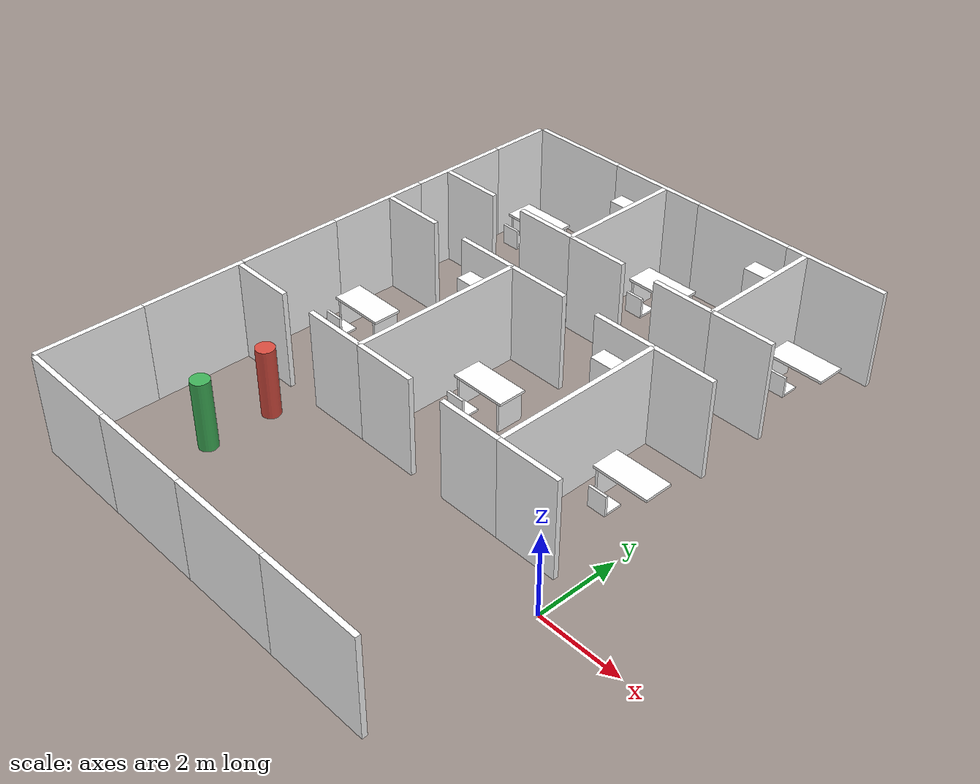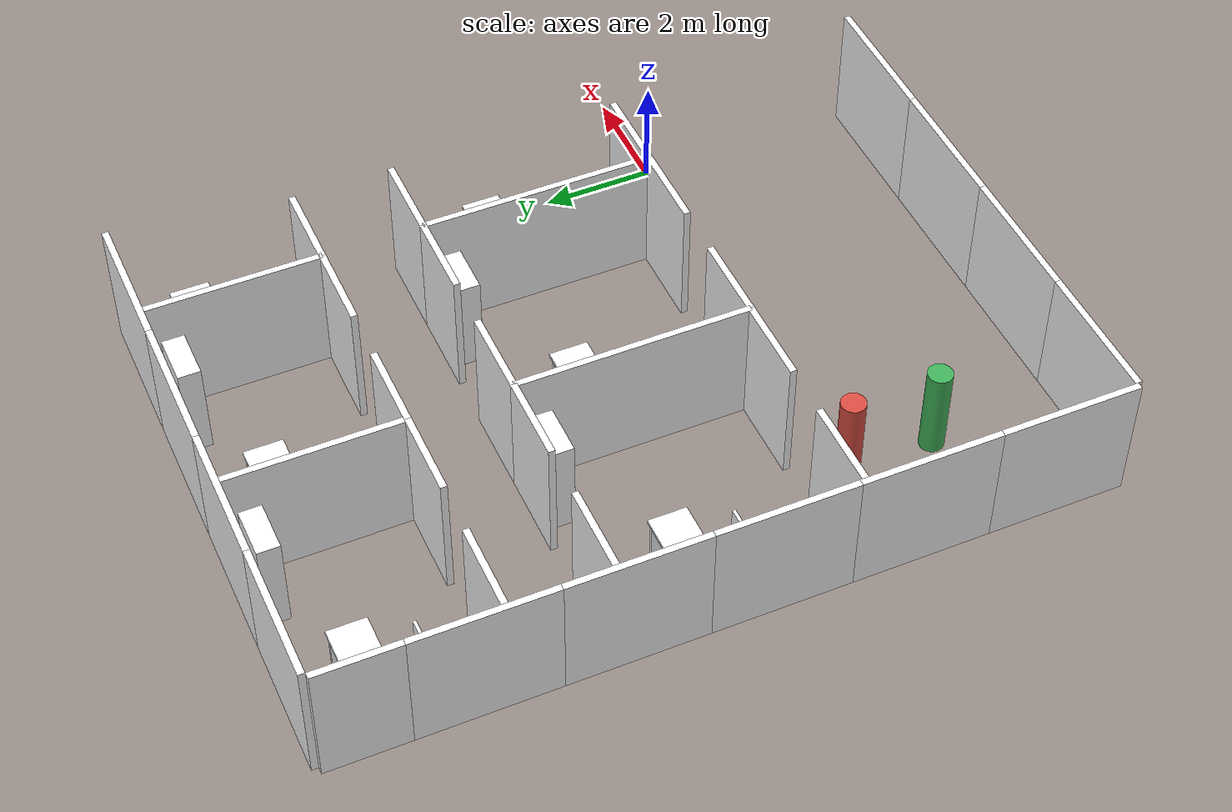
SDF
<sdf version="1.9">
 <world name="office">
  <model name="ground_plane">
   <static>true</static>
   <link name="link">
    <collision name="collision">
     <geometry><plane><normal>0 0 1</normal><size>100 100</size></plane></geometry>
     <surface><friction><ode><mu>1.0</mu><mu2>1.0</mu2></ode></friction></surface>
    </collision>
   </link>
  </model>
  <model name="w_s0">
   <static>true</static>
   <pose>-8.7500 -4.0100 1.2000 0 0 0</pose>
   <link name="link">
    <collision name="c"><geometry><box><size>2.5000 0.1200 2.4000</size></box></geometry></collision>
    <visual name="v">
     <geometry><box><size>2.5000 0.1200 2.4000</size></box></geometry>
     <material>
      <diffuse>1 1 1 1</diffuse>
      <pbr>
       <metal>
        <albedo_map>model://room_materials/materials/textures/office_000.png</albedo_map>
        <roughness>0.92</roughness>
       </metal>
      </pbr>
     </material>
    </visual>
   </link>
  </model>
  <model name="w_n1">
   <static>true</static>
   <pose>-8.7500 10.0600 1.2000 0 0 0</pose>
   <link name="link">
    <collision name="c"><geometry><box><size>2.5000 0.1200 2.4000</size></box></geometry></collision>
    <visual name="v">
     <geometry><box><size>2.5000 0.1200 2.4000</size></box></geometry>
     <material>
      <diffuse>1 1 1 1</diffuse>
      <pbr>
       <metal>
        <albedo_map>model://room_materials/materials/textures/office_001.png</albedo_map>
        <roughness>0.92</roughness>
       </metal>
      </pbr>
     </material>
    </visual>
   </link>
  </model>
  <model name="w_s2">
   <static>true</static>
   <pose>-6.2500 -4.0100 1.2000 0 0 0</pose>
   <link name="link">
    <collision name="c"><geometry><box><size>2.5000 0.1200 2.4000</size></box></geometry></collision>
    <visual name="v">
     <geometry><box><size>2.5000 0.1200 2.4000</size></box></geometry>
     <material>
      <diffuse>1 1 1 1</diffuse>
      <pbr>
       <metal>
        <albedo_map>model://room_materials/materials/textures/office_002.png</albedo_map>
        <roughness>0.92</roughness>
       </metal>
      </pbr>
     </material>
    </visual>
   </link>
  </model>
  <model name="w_n3">
   <static>true</static>
   <pose>-6.2500 10.0600 1.2000 0 0 0</pose>
   <link name="link">
    <collision name="c"><geometry><box><size>2.5000 0.1200 2.4000</size></box></geometry></collision>
    <visual name="v">
     <geometry><box><size>2.5000 0.1200 2.4000</size></box></geometry>
     <material>
      <diffuse>1 1 1 1</diffuse>
      <pbr>
       <metal>
        <albedo_map>model://room_materials/materials/textures/office_003.png</albedo_map>
        <roughness>0.92</roughness>
       </metal>
      </pbr>
     </material>
    </visual>
   </link>
  </model>
  <model name="w_s4">
   <static>true</static>
   <pose>-3.7500 -4.0100 1.2000 0 0 0</pose>
   <link name="link">
    <collision name="c"><geometry><box><size>2.5000 0.1200 2.4000</size></box></geometry></collision>
    <visual name="v">
     <geometry><box><size>2.5000 0.1200 2.4000</size></box></geometry>
     <material>
      <diffuse>1 1 1 1</diffuse>
      <pbr>
       <metal>
        <albedo_map>model://room_materials/materials/textures/office_004.png</albedo_map>
        <roughness>0.92</roughness>
       </metal>
      </pbr>
     </material>
    </visual>
   </link>
  </model>
  <model name="w_n5">
   <static>true</static>
   <pose>-3.7500 10.0600 1.2000 0 0 0</pose>
   <link name="link">
    <collision name="c"><geometry><box><size>2.5000 0.1200 2.4000</size></box></geometry></collision>
    <visual name="v">
     <geometry><box><size>2.5000 0.1200 2.4000</size></box></geometry>
     <material>
      <diffuse>1 1 1 1</diffuse>
      <pbr>
       <metal>
        <albedo_map>model://room_materials/materials/textures/office_005.png</albedo_map>
        <roughness>0.92</roughness>
       </metal>
      </pbr>
     </material>
    </visual>
   </link>
  </model>
  <model name="w_s6">
   <static>true</static>
   <pose>-1.2500 -4.0100 1.2000 0 0 0</pose>
   <link name="link">
    <collision name="c"><geometry><box><size>2.5000 0.1200 2.4000</size></box></geometry></collision>
    <visual name="v">
     <geometry><box><size>2.5000 0.1200 2.4000</size></box></geometry>
     <material>
      <diffuse>1 1 1 1</diffuse>
      <pbr>
       <metal>
        <albedo_map>model://room_materials/materials/textures/office_006.png</albedo_map>
        <roughness>0.92</roughness>
       </metal>
      </pbr>
     </material>
    </visual>
   </link>
  </model>
  <model name="w_n7">
   <static>true</static>
   <pose>-1.2500 10.0600 1.2000 0 0 0</pose>
   <link name="link">
    <collision name="c"><geometry><box><size>2.5000 0.1200 2.4000</size></box></geometry></collision>
    <visual name="v">
     <geometry><box><size>2.5000 0.1200 2.4000</size></box></geometry>
     <material>
      <diffuse>1 1 1 1</diffuse>
      <pbr>
       <metal>
        <albedo_map>model://room_materials/materials/textures/office_007.png</albedo_map>
        <roughness>0.92</roughness>
       </metal>
      </pbr>
     </material>
    </visual>
   </link>
  </model>
  <model name="w_w16">
   <static>true</static>
   <pose>-10.0600 -2.7500 1.2000 0 0 0</pose>
   <link name="link">
    <collision name="c"><geometry><box><size>0.1200 2.5000 2.4000</size></box></geometry></collision>
    <visual name="v">
     <geometry><box><size>0.1200 2.5000 2.4000</size></box></geometry>
     <material>
      <diffuse>1 1 1 1</diffuse>
      <pbr>
       <metal>
        <albedo_map>model://room_materials/materials/textures/office_016.png</albedo_map>
        <roughness>0.92</roughness>
       </metal>
      </pbr>
     </material>
    </visual>
   </link>
  </model>
  <model name="w_w18">
   <static>true</static>
   <pose>-10.0600 -0.2500 1.2000 0 0 0</pose>
   <link name="link">
    <collision name="c"><geometry><box><size>0.1200 2.5000 2.4000</size></box></geometry></collision>
    <visual name="v">
     <geometry><box><size>0.1200 2.5000 2.4000</size></box></geometry>
     <material>
      <diffuse>1 1 1 1</diffuse>
      <pbr>
       <metal>
        <albedo_map>model://room_materials/materials/textures/office_018.png</albedo_map>
        <roughness>0.92</roughness>
       </metal>
      </pbr>
     </material>
    </visual>
   </link>
  </model>
  <model name="w_w20">
   <static>true</static>
   <pose>-10.0600 2.2500 1.2000 0 0 0</pose>
   <link name="link">
    <collision name="c"><geometry><box><size>0.1200 2.5000 2.4000</size></box></geometry></collision>
    <visual name="v">
     <geometry><box><size>0.1200 2.5000 2.4000</size></box></geometry>
     <material>
      <diffuse>1 1 1 1</diffuse>
      <pbr>
       <metal>
        <albedo_map>model://room_materials/materials/textures/office_020.png</albedo_map>
        <roughness>0.92</roughness>
       </metal>
      </pbr>
     </material>
    </visual>
   </link>
  </model>
  <model name="w_w22">
   <static>true</static>
   <pose>-10.0600 4.7500 1.2000 0 0 0</pose>
   <link name="link">
    <collision name="c"><geometry><box><size>0.1200 2.5000 2.4000</size></box></geometry></collision>
    <visual name="v">
     <geometry><box><size>0.1200 2.5000 2.4000</size></box></geometry>
     <material>
      <diffuse>1 1 1 1</diffuse>
      <pbr>
       <metal>
        <albedo_map>model://room_materials/materials/textures/office_022.png</albedo_map>
        <roughness>0.92</roughness>
       </metal>
      </pbr>
     </material>
    </visual>
   </link>
  </model>
  <model name="w_w24">
   <static>true</static>
   <pose>-10.0600 7.2500 1.2000 0 0 0</pose>
   <link name="link">
    <collision name="c"><geometry><box><size>0.1200 2.5000 2.4000</size></box></geometry></collision>
    <visual name="v">
     <geometry><box><size>0.1200 2.5000 2.4000</size></box></geometry>
     <material>
      <diffuse>1 1 1 1</diffuse>
      <pbr>
       <metal>
        <albedo_map>model://room_materials/materials/textures/office_024.png</albedo_map>
        <roughness>0.92</roughness>
       </metal>
      </pbr>
     </material>
    </visual>
   </link>
  </model>
  <model name="w_w26">
   <static>true</static>
   <pose>-10.0600 9.2500 1.2000 0 0 0</pose>
   <link name="link">
    <collision name="c"><geometry><box><size>0.1200 1.5000 2.4000</size></box></geometry></collision>
    <visual name="v">
     <geometry><box><size>0.1200 1.5000 2.4000</size></box></geometry>
     <material>
      <diffuse>1 1 1 1</diffuse>
      <pbr>
       <metal>
        <albedo_map>model://room_materials/materials/textures/office_026.png</albedo_map>
        <roughness>0.92</roughness>
       </metal>
      </pbr>
     </material>
    </visual>
   </link>
  </model>
  <model name="cA_n_0a">
   <static>true</static>
   <pose>-9.2250 0.9000 1.2000 0 0 0</pose>
   <link name="link">
    <collision name="c"><geometry><box><size>1.5500 0.1200 2.4000</size></box></geometry></collision>
    <visual name="v">
     <geometry><box><size>1.5500 0.1200 2.4000</size></box></geometry>
     <material>
      <diffuse>1 1 1 1</diffuse>
      <pbr>
       <metal>
        <albedo_map>model://room_materials/materials/textures/office_028.png</albedo_map>
        <roughness>0.92</roughness>
       </metal>
      </pbr>
     </material>
    </visual>
   </link>
  </model>
  <model name="cA_n_0b">
   <static>true</static>
   <pose>-6.7750 0.9000 1.2000 0 0 0</pose>
   <link name="link">
    <collision name="c"><geometry><box><size>1.5500 0.1200 2.4000</size></box></geometry></collision>
    <visual name="v">
     <geometry><box><size>1.5500 0.1200 2.4000</size></box></geometry>
     <material>
      <diffuse>1 1 1 1</diffuse>
      <pbr>
       <metal>
        <albedo_map>model://room_materials/materials/textures/office_029.png</albedo_map>
        <roughness>0.92</roughness>
       </metal>
      </pbr>
     </material>
    </visual>
   </link>
  </model>
  <model name="cA_n_1a">
   <static>true</static>
   <pose>-5.2250 0.9000 1.2000 0 0 0</pose>
   <link name="link">
    <collision name="c"><geometry><box><size>1.5500 0.1200 2.4000</size></box></geometry></collision>
    <visual name="v">
     <geometry><box><size>1.5500 0.1200 2.4000</size></box></geometry>
     <material>
      <diffuse>1 1 1 1</diffuse>
      <pbr>
       <metal>
        <albedo_map>model://room_materials/materials/textures/office_030.png</albedo_map>
        <roughness>0.92</roughness>
       </metal>
      </pbr>
     </material>
    </visual>
   </link>
  </model>
  <model name="cA_n_1b">
   <static>true</static>
   <pose>-2.7750 0.9000 1.2000 0 0 0</pose>
   <link name="link">
    <collision name="c"><geometry><box><size>1.5500 0.1200 2.4000</size></box></geometry></collision>
    <visual name="v">
     <geometry><box><size>1.5500 0.1200 2.4000</size></box></geometry>
     <material>
      <diffuse>1 1 1 1</diffuse>
      <pbr>
       <metal>
        <albedo_map>model://room_materials/materials/textures/office_031.png</albedo_map>
        <roughness>0.92</roughness>
       </metal>
      </pbr>
     </material>
    </visual>
   </link>
  </model>
  <model name="cA_n_2a">
   <static>true</static>
   <pose>-1.2250 0.9000 1.2000 0 0 0</pose>
   <link name="link">
    <collision name="c"><geometry><box><size>1.5500 0.1200 2.4000</size></box></geometry></collision>
    <visual name="v">
     <geometry><box><size>1.5500 0.1200 2.4000</size></box></geometry>
     <material>
      <diffuse>1 1 1 1</diffuse>
      <pbr>
       <metal>
        <albedo_map>model://room_materials/materials/textures/office_032.png</albedo_map>
        <roughness>0.92</roughness>
       </metal>
      </pbr>
     </material>
    </visual>
   </link>
  </model>
  <model name="cB_s_0a">
   <static>true</static>
   <pose>-9.2250 5.1000 1.2000 0 0 0</pose>
   <link name="link">
    <collision name="c"><geometry><box><size>1.5500 0.1200 2.4000</size></box></geometry></collision>
    <visual name="v">
     <geometry><box><size>1.5500 0.1200 2.4000</size></box></geometry>
     <material>
      <diffuse>1 1 1 1</diffuse>
      <pbr>
       <metal>
        <albedo_map>model://room_materials/materials/textures/office_038.png</albedo_map>
        <roughness>0.92</roughness>
       </metal>
      </pbr>
     </material>
    </visual>
   </link>
  </model>
  <model name="cB_s_0b">
   <static>true</static>
   <pose>-6.7750 5.1000 1.2000 0 0 0</pose>
   <link name="link">
    <collision name="c"><geometry><box><size>1.5500 0.1200 2.4000</size></box></geometry></collision>
    <visual name="v">
     <geometry><box><size>1.5500 0.1200 2.4000</size></box></geometry>
     <material>
      <diffuse>1 1 1 1</diffuse>
      <pbr>
       <metal>
        <albedo_map>model://room_materials/materials/textures/office_039.png</albedo_map>
        <roughness>0.92</roughness>
       </metal>
      </pbr>
     </material>
    </visual>
   </link>
  </model>
  <model name="cB_s_1a">
   <static>true</static>
   <pose>-5.2250 5.1000 1.2000 0 0 0</pose>
   <link name="link">
    <collision name="c"><geometry><box><size>1.5500 0.1200 2.4000</size></box></geometry></collision>
    <visual name="v">
     <geometry><box><size>1.5500 0.1200 2.4000</size></box></geometry>
     <material>
      <diffuse>1 1 1 1</diffuse>
      <pbr>
       <metal>
        <albedo_map>model://room_materials/materials/textures/office_040.png</albedo_map>
        <roughness>0.92</roughness>
       </metal>
      </pbr>
     </material>
    </visual>
   </link>
  </model>
  <model name="cB_s_1b">
   <static>true</static>
   <pose>-2.7750 5.1000 1.2000 0 0 0</pose>
   <link name="link">
    <collision name="c"><geometry><box><size>1.5500 0.1200 2.4000</size></box></geometry></collision>
    <visual name="v">
     <geometry><box><size>1.5500 0.1200 2.4000</size></box></geometry>
     <material>
      <diffuse>1 1 1 1</diffuse>
      <pbr>
       <metal>
        <albedo_map>model://room_materials/materials/textures/office_041.png</albedo_map>
        <roughness>0.92</roughness>
       </metal>
      </pbr>
     </material>
    </visual>
   </link>
  </model>
  <model name="cB_s_2a">
   <static>true</static>
   <pose>-1.2250 5.1000 1.2000 0 0 0</pose>
   <link name="link">
    <collision name="c"><geometry><box><size>1.5500 0.1200 2.4000</size></box></geometry></collision>
    <visual name="v">
     <geometry><box><size>1.5500 0.1200 2.4000</size></box></geometry>
     <material>
      <diffuse>1 1 1 1</diffuse>
      <pbr>
       <metal>
        <albedo_map>model://room_materials/materials/textures/office_042.png</albedo_map>
        <roughness>0.92</roughness>
       </metal>
      </pbr>
     </material>
    </visual>
   </link>
  </model>
  <model name="cB_n_0a">
   <static>true</static>
   <pose>-9.2250 6.9000 1.2000 0 0 0</pose>
   <link name="link">
    <collision name="c"><geometry><box><size>1.5500 0.1200 2.4000</size></box></geometry></collision>
    <visual name="v">
     <geometry><box><size>1.5500 0.1200 2.4000</size></box></geometry>
     <material>
      <diffuse>1 1 1 1</diffuse>
      <pbr>
       <metal>
        <albedo_map>model://room_materials/materials/textures/office_048.png</albedo_map>
        <roughness>0.92</roughness>
       </metal>
      </pbr>
     </material>
    </visual>
   </link>
  </model>
  <model name="cB_n_0b">
   <static>true</static>
   <pose>-6.7750 6.9000 1.2000 0 0 0</pose>
   <link name="link">
    <collision name="c"><geometry><box><size>1.5500 0.1200 2.4000</size></box></geometry></collision>
    <visual name="v">
     <geometry><box><size>1.5500 0.1200 2.4000</size></box></geometry>
     <material>
      <diffuse>1 1 1 1</diffuse>
      <pbr>
       <metal>
        <albedo_map>model://room_materials/materials/textures/office_049.png</albedo_map>
        <roughness>0.92</roughness>
       </metal>
      </pbr>
     </material>
    </visual>
   </link>
  </model>
  <model name="cB_n_1a">
   <static>true</static>
   <pose>-5.2250 6.9000 1.2000 0 0 0</pose>
   <link name="link">
    <collision name="c"><geometry><box><size>1.5500 0.1200 2.4000</size></box></geometry></collision>
    <visual name="v">
     <geometry><box><size>1.5500 0.1200 2.4000</size></box></geometry>
     <material>
      <diffuse>1 1 1 1</diffuse>
      <pbr>
       <metal>
        <albedo_map>model://room_materials/materials/textures/office_050.png</albedo_map>
        <roughness>0.92</roughness>
       </metal>
      </pbr>
     </material>
    </visual>
   </link>
  </model>
  <model name="cB_n_1b">
   <static>true</static>
   <pose>-2.7750 6.9000 1.2000 0 0 0</pose>
   <link name="link">
    <collision name="c"><geometry><box><size>1.5500 0.1200 2.4000</size></box></geometry></collision>
    <visual name="v">
     <geometry><box><size>1.5500 0.1200 2.4000</size></box></geometry>
     <material>
      <diffuse>1 1 1 1</diffuse>
      <pbr>
       <metal>
        <albedo_map>model://room_materials/materials/textures/office_051.png</albedo_map>
        <roughness>0.92</roughness>
       </metal>
      </pbr>
     </material>
    </visual>
   </link>
  </model>
  <model name="cB_n_2a">
   <static>true</static>
   <pose>-1.2250 6.9000 1.2000 0 0 0</pose>
   <link name="link">
    <collision name="c"><geometry><box><size>1.5500 0.1200 2.4000</size></box></geometry></collision>
    <visual name="v">
     <geometry><box><size>1.5500 0.1200 2.4000</size></box></geometry>
     <material>
      <diffuse>1 1 1 1</diffuse>
      <pbr>
       <metal>
        <albedo_map>model://room_materials/materials/textures/office_052.png</albedo_map>
        <roughness>0.92</roughness>
       </metal>
      </pbr>
     </material>
    </visual>
   </link>
  </model>
  <model name="p1_0">
   <static>true</static>
   <pose>-6.0000 3.0000 1.2000 0 0 0</pose>
   <link name="link">
    <collision name="c"><geometry><box><size>0.1200 4.2000 2.4000</size></box></geometry></collision>
    <visual name="v">
     <geometry><box><size>0.1200 4.2000 2.4000</size></box></geometry>
     <material>
      <diffuse>1 1 1 1</diffuse>
      <pbr>
       <metal>
        <albedo_map>model://room_materials/materials/textures/office_058.png</albedo_map>
        <roughness>0.92</roughness>
       </metal>
      </pbr>
     </material>
    </visual>
   </link>
  </model>
  <model name="p2_0">
   <static>true</static>
   <pose>-6.0000 8.4500 1.2000 0 0 0</pose>
   <link name="link">
    <collision name="c"><geometry><box><size>0.1200 3.1000 2.4000</size></box></geometry></collision>
    <visual name="v">
     <geometry><box><size>0.1200 3.1000 2.4000</size></box></geometry>
     <material>
      <diffuse>1 1 1 1</diffuse>
      <pbr>
       <metal>
        <albedo_map>model://room_materials/materials/textures/office_059.png</albedo_map>
        <roughness>0.92</roughness>
       </metal>
      </pbr>
     </material>
    </visual>
   </link>
  </model>
  <model name="p1_1">
   <static>true</static>
   <pose>-2.0000 3.0000 1.2000 0 0 0</pose>
   <link name="link">
    <collision name="c"><geometry><box><size>0.1200 4.2000 2.4000</size></box></geometry></collision>
    <visual name="v">
     <geometry><box><size>0.1200 4.2000 2.4000</size></box></geometry>
     <material>
      <diffuse>1 1 1 1</diffuse>
      <pbr>
       <metal>
        <albedo_map>model://room_materials/materials/textures/office_060.png</albedo_map>
        <roughness>0.92</roughness>
       </metal>
      </pbr>
     </material>
    </visual>
   </link>
  </model>
  <model name="p2_1">
   <static>true</static>
   <pose>-2.0000 8.4500 1.2000 0 0 0</pose>
   <link name="link">
    <collision name="c"><geometry><box><size>0.1200 3.1000 2.4000</size></box></geometry></collision>
    <visual name="v">
     <geometry><box><size>0.1200 3.1000 2.4000</size></box></geometry>
     <material>
      <diffuse>1 1 1 1</diffuse>
      <pbr>
       <metal>
        <albedo_map>model://room_materials/materials/textures/office_061.png</albedo_map>
        <roughness>0.92</roughness>
       </metal>
      </pbr>
     </material>
    </visual>
   </link>
  </model>
  <model name="desk_0">
   <static>true</static>
   <pose>-8.900 3.400 0.750 0 0 0</pose>
   <link name="link">
    <collision name="c"><geometry><box><size>1.400 0.700 0.060</size></box></geometry></collision>
    <visual name="v">
     <geometry><box><size>1.400 0.700 0.060</size></box></geometry>
     <material>
      <diffuse>1 1 1 1</diffuse>
      <pbr>
       <metal>
        <albedo_map>model://room_materials/materials/textures/poster1.png</albedo_map>
        <roughness>0.92</roughness>
       </metal>
      </pbr>
     </material>
    </visual>
   </link>
  </model>
  <model name="desk_0_l1">
   <static>true</static>
   <pose>-9.500 3.400 0.360 0 0 0</pose>
   <link name="link">
    <collision name="c"><geometry><box><size>0.060 0.660 0.720</size></box></geometry></collision>
    <visual name="v">
     <geometry><box><size>0.060 0.660 0.720</size></box></geometry>
     <material>
      <diffuse>1 1 1 1</diffuse>
      <pbr>
       <metal>
        <albedo_map>model://room_materials/materials/textures/crate.png</albedo_map>
        <roughness>0.92</roughness>
       </metal>
      </pbr>
     </material>
    </visual>
   </link>
  </model>
  <model name="desk_0_l2">
   <static>true</static>
   <pose>-8.300 3.400 0.360 0 0 0</pose>
   <link name="link">
    <collision name="c"><geometry><box><size>0.060 0.660 0.720</size></box></geometry></collision>
    <visual name="v">
     <geometry><box><size>0.060 0.660 0.720</size></box></geometry>
     <material>
      <diffuse>1 1 1 1</diffuse>
      <pbr>
       <metal>
        <albedo_map>model://room_materials/materials/textures/crate.png</albedo_map>
        <roughness>0.92</roughness>
       </metal>
      </pbr>
     </material>
    </visual>
   </link>
  </model>
  <model name="chair_0">
   <static>true</static>
   <pose>-8.900 2.650 0.455 0 0 0</pose>
   <link name="link">
    <collision name="c"><geometry><box><size>0.450 0.450 0.050</size></box></geometry></collision>
    <visual name="v">
     <geometry><box><size>0.450 0.450 0.050</size></box></geometry>
     <material>
      <diffuse>1 1 1 1</diffuse>
      <pbr>
       <metal>
        <albedo_map>model://room_materials/materials/textures/crate.png</albedo_map>
        <roughness>0.92</roughness>
       </metal>
      </pbr>
     </material>
    </visual>
   </link>
  </model>
  <model name="chair_0_b">
   <static>true</static>
   <pose>-8.900 2.450 0.680 0 0 0</pose>
   <link name="link">
    <collision name="c"><geometry><box><size>0.450 0.060 0.500</size></box></geometry></collision>
    <visual name="v">
     <geometry><box><size>0.450 0.060 0.500</size></box></geometry>
     <material>
      <diffuse>1 1 1 1</diffuse>
      <pbr>
       <metal>
        <albedo_map>model://room_materials/materials/textures/poster1.png</albedo_map>
        <roughness>0.92</roughness>
       </metal>
      </pbr>
     </material>
    </visual>
   </link>
  </model>
  <model name="shelf_0">
   <static>true</static>
   <pose>-6.700 4.750 0.900 0 0 0</pose>
   <link name="link">
    <collision name="c"><geometry><box><size>0.900 0.400 1.800</size></box></geometry></collision>
    <visual name="v">
     <geometry><box><size>0.900 0.400 1.800</size></box></geometry>
     <material>
      <diffuse>1 1 1 1</diffuse>
      <pbr>
       <metal>
        <albedo_map>model://room_materials/materials/textures/poster1.png</albedo_map>
        <roughness>0.92</roughness>
       </metal>
      </pbr>
     </material>
    </visual>
   </link>
  </model>
  <model name="desk_1">
   <static>true</static>
   <pose>-4.900 3.400 0.750 0 0 0</pose>
   <link name="link">
    <collision name="c"><geometry><box><size>1.400 0.700 0.060</size></box></geometry></collision>
    <visual name="v">
     <geometry><box><size>1.400 0.700 0.060</size></box></geometry>
     <material>
      <diffuse>1 1 1 1</diffuse>
      <pbr>
       <metal>
        <albedo_map>model://room_materials/materials/textures/poster2.png</albedo_map>
        <roughness>0.92</roughness>
       </metal>
      </pbr>
     </material>
    </visual>
   </link>
  </model>
  <model name="desk_1_l1">
   <static>true</static>
   <pose>-5.500 3.400 0.360 0 0 0</pose>
   <link name="link">
    <collision name="c"><geometry><box><size>0.060 0.660 0.720</size></box></geometry></collision>
    <visual name="v">
     <geometry><box><size>0.060 0.660 0.720</size></box></geometry>
     <material>
      <diffuse>1 1 1 1</diffuse>
      <pbr>
       <metal>
        <albedo_map>model://room_materials/materials/textures/crate.png</albedo_map>
        <roughness>0.92</roughness>
       </metal>
      </pbr>
     </material>
    </visual>
   </link>
  </model>
  <model name="desk_1_l2">
   <static>true</static>
   <pose>-4.300 3.400 0.360 0 0 0</pose>
   <link name="link">
    <collision name="c"><geometry><box><size>0.060 0.660 0.720</size></box></geometry></collision>
    <visual name="v">
     <geometry><box><size>0.060 0.660 0.720</size></box></geometry>
     <material>
      <diffuse>1 1 1 1</diffuse>
      <pbr>
       <metal>
        <albedo_map>model://room_materials/materials/textures/crate.png</albedo_map>
        <roughness>0.92</roughness>
       </metal>
      </pbr>
     </material>
    </visual>
   </link>
  </model>
  <model name="chair_1">
   <static>true</static>
   <pose>-4.900 2.650 0.455 0 0 0</pose>
   <link name="link">
    <collision name="c"><geometry><box><size>0.450 0.450 0.050</size></box></geometry></collision>
    <visual name="v">
     <geometry><box><size>0.450 0.450 0.050</size></box></geometry>
     <material>
      <diffuse>1 1 1 1</diffuse>
      <pbr>
       <metal>
        <albedo_map>model://room_materials/materials/textures/crate.png</albedo_map>
        <roughness>0.92</roughness>
       </metal>
      </pbr>
     </material>
    </visual>
   </link>
  </model>
  <model name="chair_1_b">
   <static>true</static>
   <pose>-4.900 2.450 0.680 0 0 0</pose>
   <link name="link">
    <collision name="c"><geometry><box><size>0.450 0.060 0.500</size></box></geometry></collision>
    <visual name="v">
     <geometry><box><size>0.450 0.060 0.500</size></box></geometry>
     <material>
      <diffuse>1 1 1 1</diffuse>
      <pbr>
       <metal>
        <albedo_map>model://room_materials/materials/textures/poster2.png</albedo_map>
        <roughness>0.92</roughness>
       </metal>
      </pbr>
     </material>
    </visual>
   </link>
  </model>
  <model name="shelf_1">
   <static>true</static>
   <pose>-2.700 4.750 0.900 0 0 0</pose>
   <link name="link">
    <collision name="c"><geometry><box><size>0.900 0.400 1.800</size></box></geometry></collision>
    <visual name="v">
     <geometry><box><size>0.900 0.400 1.800</size></box></geometry>
     <material>
      <diffuse>1 1 1 1</diffuse>
      <pbr>
       <metal>
        <albedo_map>model://room_materials/materials/textures/poster2.png</albedo_map>
        <roughness>0.92</roughness>
       </metal>
      </pbr>
     </material>
    </visual>
   </link>
  </model>
  <model name="desk_2">
   <static>true</static>
   <pose>-0.900 3.400 0.750 0 0 0</pose>
   <link name="link">
    <collision name="c"><geometry><box><size>1.400 0.700 0.060</size></box></geometry></collision>
    <visual name="v">
     <geometry><box><size>1.400 0.700 0.060</size></box></geometry>
     <material>
      <diffuse>1 1 1 1</diffuse>
      <pbr>
       <metal>
        <albedo_map>model://room_materials/materials/textures/poster3.png</albedo_map>
        <roughness>0.92</roughness>
       </metal>
      </pbr>
     </material>
    </visual>
   </link>
  </model>
  <model name="desk_2_l1">
   <static>true</static>
   <pose>-1.500 3.400 0.360 0 0 0</pose>
   <link name="link">
    <collision name="c"><geometry><box><size>0.060 0.660 0.720</size></box></geometry></collision>
    <visual name="v">
     <geometry><box><size>0.060 0.660 0.720</size></box></geometry>
     <material>
      <diffuse>1 1 1 1</diffuse>
      <pbr>
       <metal>
        <albedo_map>model://room_materials/materials/textures/crate.png</albedo_map>
        <roughness>0.92</roughness>
       </metal>
      </pbr>
     </material>
    </visual>
   </link>
  </model>
  <model name="chair_2">
   <static>true</static>
   <pose>-0.900 2.650 0.455 0 0 0</pose>
   <link name="link">
    <collision name="c"><geometry><box><size>0.450 0.450 0.050</size></box></geometry></collision>
    <visual name="v">
     <geometry><box><size>0.450 0.450 0.050</size></box></geometry>
     <material>
      <diffuse>1 1 1 1</diffuse>
      <pbr>
       <metal>
        <albedo_map>model://room_materials/materials/textures/crate.png</albedo_map>
        <roughness>0.92</roughness>
       </metal>
      </pbr>
     </material>
    </visual>
   </link>
  </model>
  <model name="chair_2_b">
   <static>true</static>
   <pose>-0.900 2.450 0.680 0 0 0</pose>
   <link name="link">
    <collision name="c"><geometry><box><size>0.450 0.060 0.500</size></box></geometry></collision>
    <visual name="v">
     <geometry><box><size>0.450 0.060 0.500</size></box></geometry>
     <material>
      <diffuse>1 1 1 1</diffuse>
      <pbr>
       <metal>
        <albedo_map>model://room_materials/materials/textures/poster3.png</albedo_map>
        <roughness>0.92</roughness>
       </metal>
      </pbr>
     </material>
    </visual>
   </link>
  </model>
  <model name="desk_5">
   <static>true</static>
   <pose>-8.900 8.850 0.750 0 0 0</pose>
   <link name="link">
    <collision name="c"><geometry><box><size>1.400 0.700 0.060</size></box></geometry></collision>
    <visual name="v">
     <geometry><box><size>1.400 0.700 0.060</size></box></geometry>
     <material>
      <diffuse>1 1 1 1</diffuse>
      <pbr>
       <metal>
        <albedo_map>model://room_materials/materials/textures/poster6.png</albedo_map>
        <roughness>0.92</roughness>
       </metal>
      </pbr>
     </material>
    </visual>
   </link>
  </model>
  <model name="desk_5_l1">
   <static>true</static>
   <pose>-9.500 8.850 0.360 0 0 0</pose>
   <link name="link">
    <collision name="c"><geometry><box><size>0.060 0.660 0.720</size></box></geometry></collision>
    <visual name="v">
     <geometry><box><size>0.060 0.660 0.720</size></box></geometry>
     <material>
      <diffuse>1 1 1 1</diffuse>
      <pbr>
       <metal>
        <albedo_map>model://room_materials/materials/textures/crate.png</albedo_map>
        <roughness>0.92</roughness>
       </metal>
      </pbr>
     </material>
    </visual>
   </link>
  </model>
  <model name="desk_5_l2">
   <static>true</static>
   <pose>-8.300 8.850 0.360 0 0 0</pose>
   <link name="link">
    <collision name="c"><geometry><box><size>0.060 0.660 0.720</size></box></geometry></collision>
    <visual name="v">
     <geometry><box><size>0.060 0.660 0.720</size></box></geometry>
     <material>
      <diffuse>1 1 1 1</diffuse>
      <pbr>
       <metal>
        <albedo_map>model://room_materials/materials/textures/crate.png</albedo_map>
        <roughness>0.92</roughness>
       </metal>
      </pbr>
     </material>
    </visual>
   </link>
  </model>
  <model name="chair_5">
   <static>true</static>
   <pose>-8.900 8.100 0.455 0 0 0</pose>
   <link name="link">
    <collision name="c"><geometry><box><size>0.450 0.450 0.050</size></box></geometry></collision>
    <visual name="v">
     <geometry><box><size>0.450 0.450 0.050</size></box></geometry>
     <material>
      <diffuse>1 1 1 1</diffuse>
      <pbr>
       <metal>
        <albedo_map>model://room_materials/materials/textures/crate.png</albedo_map>
        <roughness>0.92</roughness>
       </metal>
      </pbr>
     </material>
    </visual>
   </link>
  </model>
  <model name="chair_5_b">
   <static>true</static>
   <pose>-8.900 7.900 0.680 0 0 0</pose>
   <link name="link">
    <collision name="c"><geometry><box><size>0.450 0.060 0.500</size></box></geometry></collision>
    <visual name="v">
     <geometry><box><size>0.450 0.060 0.500</size></box></geometry>
     <material>
      <diffuse>1 1 1 1</diffuse>
      <pbr>
       <metal>
        <albedo_map>model://room_materials/materials/textures/poster6.png</albedo_map>
        <roughness>0.92</roughness>
       </metal>
      </pbr>
     </material>
    </visual>
   </link>
  </model>
  <model name="shelf_5">
   <static>true</static>
   <pose>-6.700 9.650 0.900 0 0 0</pose>
   <link name="link">
    <collision name="c"><geometry><box><size>0.900 0.400 1.800</size></box></geometry></collision>
    <visual name="v">
     <geometry><box><size>0.900 0.400 1.800</size></box></geometry>
     <material>
      <diffuse>1 1 1 1</diffuse>
      <pbr>
       <metal>
        <albedo_map>model://room_materials/materials/textures/poster6.png</albedo_map>
        <roughness>0.92</roughness>
       </metal>
      </pbr>
     </material>
    </visual>
   </link>
  </model>
  <model name="desk_6">
   <static>true</static>
   <pose>-4.900 8.850 0.750 0 0 0</pose>
   <link name="link">
    <collision name="c"><geometry><box><size>1.400 0.700 0.060</size></box></geometry></collision>
    <visual name="v">
     <geometry><box><size>1.400 0.700 0.060</size></box></geometry>
     <material>
      <diffuse>1 1 1 1</diffuse>
      <pbr>
       <metal>
        <albedo_map>model://room_materials/materials/textures/poster7.png</albedo_map>
        <roughness>0.92</roughness>
       </metal>
      </pbr>
     </material>
    </visual>
   </link>
  </model>
  <model name="desk_6_l1">
   <static>true</static>
   <pose>-5.500 8.850 0.360 0 0 0</pose>
   <link name="link">
    <collision name="c"><geometry><box><size>0.060 0.660 0.720</size></box></geometry></collision>
    <visual name="v">
     <geometry><box><size>0.060 0.660 0.720</size></box></geometry>
     <material>
      <diffuse>1 1 1 1</diffuse>
      <pbr>
       <metal>
        <albedo_map>model://room_materials/materials/textures/crate.png</albedo_map>
        <roughness>0.92</roughness>
       </metal>
      </pbr>
     </material>
    </visual>
   </link>
  </model>
  <model name="desk_6_l2">
   <static>true</static>
   <pose>-4.300 8.850 0.360 0 0 0</pose>
   <link name="link">
    <collision name="c"><geometry><box><size>0.060 0.660 0.720</size></box></geometry></collision>
    <visual name="v">
     <geometry><box><size>0.060 0.660 0.720</size></box></geometry>
     <material>
      <diffuse>1 1 1 1</diffuse>
      <pbr>
       <metal>
        <albedo_map>model://room_materials/materials/textures/crate.png</albedo_map>
        <roughness>0.92</roughness>
       </metal>
      </pbr>
     </material>
    </visual>
   </link>
  </model>
  <model name="chair_6">
   <static>true</static>
   <pose>-4.900 8.100 0.455 0 0 0</pose>
   <link name="link">
    <collision name="c"><geometry><box><size>0.450 0.450 0.050</size></box></geometry></collision>
    <visual name="v">
     <geometry><box><size>0.450 0.450 0.050</size></box></geometry>
     <material>
      <diffuse>1 1 1 1</diffuse>
      <pbr>
       <metal>
        <albedo_map>model://room_materials/materials/textures/crate.png</albedo_map>
        <roughness>0.92</roughness>
       </metal>
      </pbr>
     </material>
    </visual>
   </link>
  </model>
  <model name="chair_6_b">
   <static>true</static>
   <pose>-4.900 7.900 0.680 0 0 0</pose>
   <link name="link">
    <collision name="c"><geometry><box><size>0.450 0.060 0.500</size></box></geometry></collision>
    <visual name="v">
     <geometry><box><size>0.450 0.060 0.500</size></box></geometry>
     <material>
      <diffuse>1 1 1 1</diffuse>
      <pbr>
       <metal>
        <albedo_map>model://room_materials/materials/textures/poster7.png</albedo_map>
        <roughness>0.92</roughness>
       </metal>
      </pbr>
     </material>
    </visual>
   </link>
  </model>
  <model name="shelf_6">
   <static>true</static>
   <pose>-2.700 9.650 0.900 0 0 0</pose>
   <link name="link">
    <collision name="c"><geometry><box><size>0.900 0.400 1.800</size></box></geometry></collision>
    <visual name="v">
     <geometry><box><size>0.900 0.400 1.800</size></box></geometry>
     <material>
      <diffuse>1 1 1 1</diffuse>
      <pbr>
       <metal>
        <albedo_map>model://room_materials/materials/textures/poster7.png</albedo_map>
        <roughness>0.92</roughness>
       </metal>
      </pbr>
     </material>
    </visual>
   </link>
  </model>
  <model name="desk_7">
   <static>true</static>
   <pose>-0.900 8.850 0.750 0 0 0</pose>
   <link name="link">
    <collision name="c"><geometry><box><size>1.400 0.700 0.060</size></box></geometry></collision>
    <visual name="v">
     <geometry><box><size>1.400 0.700 0.060</size></box></geometry>
     <material>
      <diffuse>1 1 1 1</diffuse>
      <pbr>
       <metal>
        <albedo_map>model://room_materials/materials/textures/poster8.png</albedo_map>
        <roughness>0.92</roughness>
       </metal>
      </pbr>
     </material>
    </visual>
   </link>
  </model>
  <model name="desk_7_l1">
   <static>true</static>
   <pose>-1.500 8.850 0.360 0 0 0</pose>
   <link name="link">
    <collision name="c"><geometry><box><size>0.060 0.660 0.720</size></box></geometry></collision>
    <visual name="v">
     <geometry><box><size>0.060 0.660 0.720</size></box></geometry>
     <material>
      <diffuse>1 1 1 1</diffuse>
      <pbr>
       <metal>
        <albedo_map>model://room_materials/materials/textures/crate.png</albedo_map>
        <roughness>0.92</roughness>
       </metal>
      </pbr>
     </material>
    </visual>
   </link>
  </model>
  <model name="chair_7">
   <static>true</static>
   <pose>-0.900 8.100 0.455 0 0 0</pose>
   <link name="link">
    <collision name="c"><geometry><box><size>0.450 0.450 0.050</size></box></geometry></collision>
    <visual name="v">
     <geometry><box><size>0.450 0.450 0.050</size></box></geometry>
     <material>
      <diffuse>1 1 1 1</diffuse>
      <pbr>
       <metal>
        <albedo_map>model://room_materials/materials/textures/crate.png</albedo_map>
        <roughness>0.92</roughness>
       </metal>
      </pbr>
     </material>
    </visual>
   </link>
  </model>
  <model name="chair_7_b">
   <static>true</static>
   <pose>-0.900 7.900 0.680 0 0 0</pose>
   <link name="link">
    <collision name="c"><geometry><box><size>0.450 0.060 0.500</size></box></geometry></collision>
    <visual name="v">
     <geometry><box><size>0.450 0.060 0.500</size></box></geometry>
     <material>
      <diffuse>1 1 1 1</diffuse>
      <pbr>
       <metal>
        <albedo_map>model://room_materials/materials/textures/poster8.png</albedo_map>
        <roughness>0.92</roughness>
       </metal>
      </pbr>
     </material>
    </visual>
   </link>
  </model>
  <model name="person_0">
   <pose>-8.00 0.00 0.85 0 0 0</pose>
   <link name="link">
    <gravity>false</gravity>
    <inertial>
     <mass>70</mass>
     <inertia><ixx>200</ixx><iyy>200</iyy><izz>200</izz><ixy>0</ixy><ixz>0</ixz><iyz>0</iyz></inertia>
    </inertial>
    <collision name="c">
     <geometry><cylinder><radius>0.22</radius><length>1.70</length></cylinder></geometry>
    </collision>
    <visual name="v">
     <geometry><cylinder><radius>0.22</radius><length>1.70</length></cylinder></geometry>
     <material>
      <ambient>0.85 0.30 0.25 1</ambient>
      <diffuse>0.85 0.30 0.25 1</diffuse>
      <specular>0.2 0.2 0.2 1</specular>
     </material>
    </visual>
   </link>
   <plugin filename="gz-sim-velocity-control-system" name="gz::sim::systems::VelocityControl">
    <topic>/model/person_0/cmd_vel</topic>
   </plugin>
  </model>
  <model name="person_2">
   <pose>-8.00 -1.60 0.85 0 0 0</pose>
   <link name="link">
    <gravity>false</gravity>
    <inertial>
     <mass>70</mass>
     <inertia><ixx>200</ixx><iyy>200</iyy><izz>200</izz><ixy>0</ixy><ixz>0</ixz><iyz>0</iyz></inertia>
    </inertial>
    <collision name="c">
     <geometry><cylinder><radius>0.22</radius><length>1.70</length></cylinder></geometry>
    </collision>
    <visual name="v">
     <geometry><cylinder><radius>0.22</radius><length>1.70</length></cylinder></geometry>
     <material>
      <ambient>0.25 0.70 0.35 1</ambient>
      <diffuse>0.25 0.70 0.35 1</diffuse>
      <specular>0.2 0.2 0.2 1</specular>
     </material>
    </visual>
   </link>
   <plugin filename="gz-sim-velocity-control-system" name="gz::sim::systems::VelocityControl">
    <topic>/model/person_2/cmd_vel</topic>
   </plugin>
  </model>
 </world>
</sdf>
